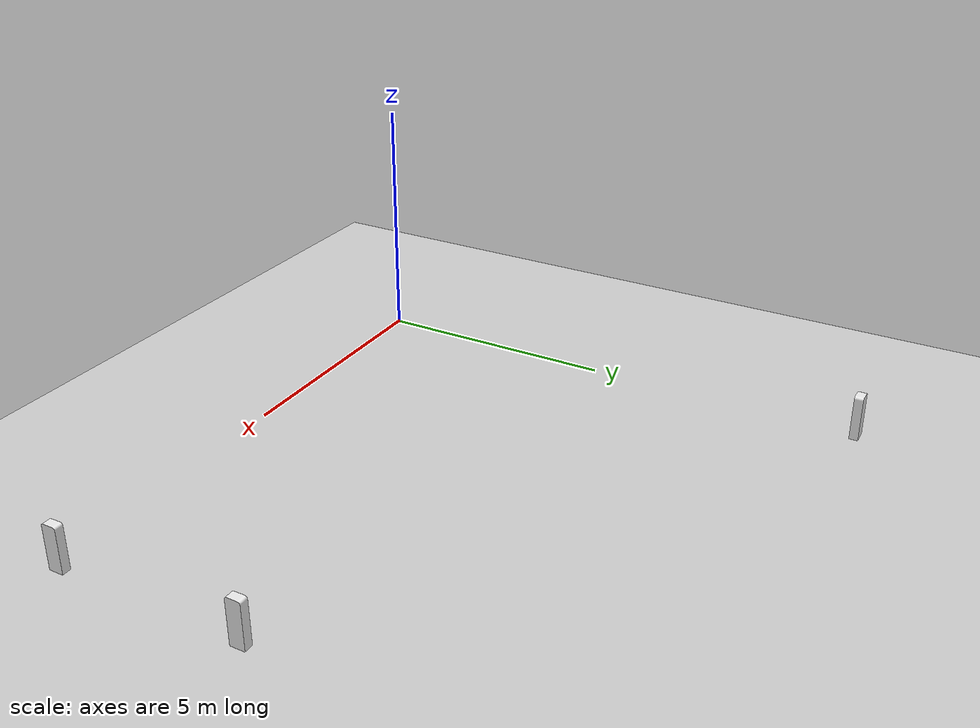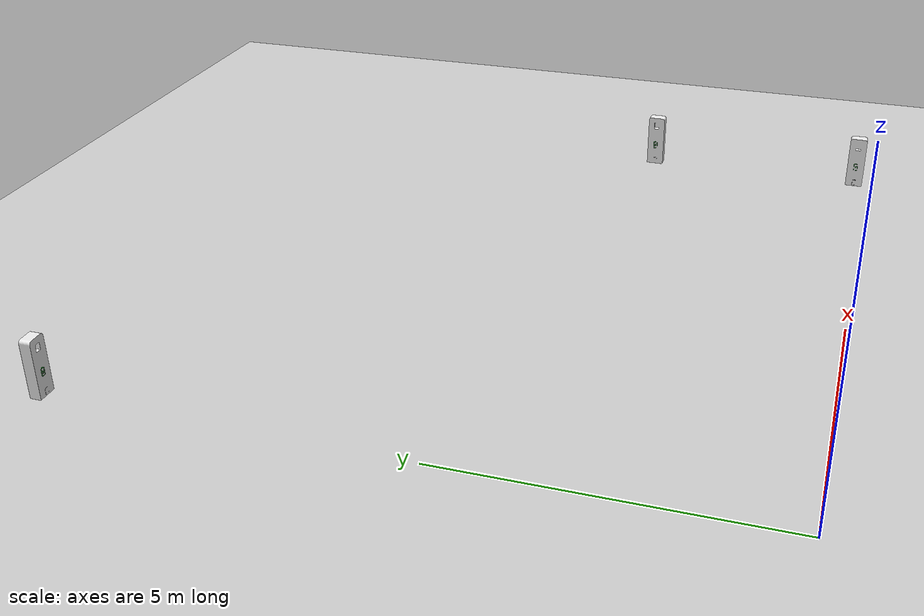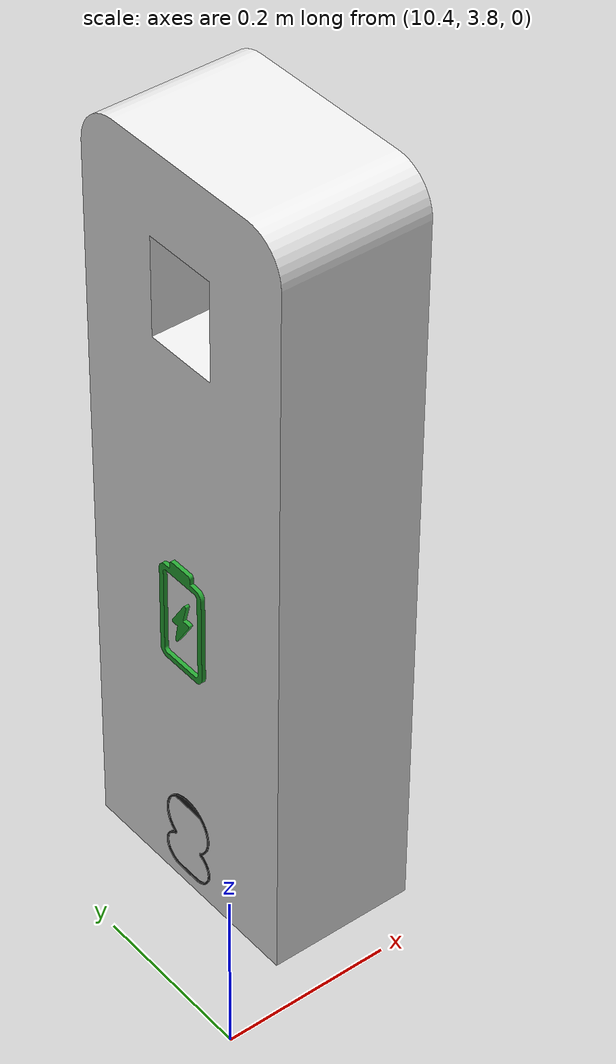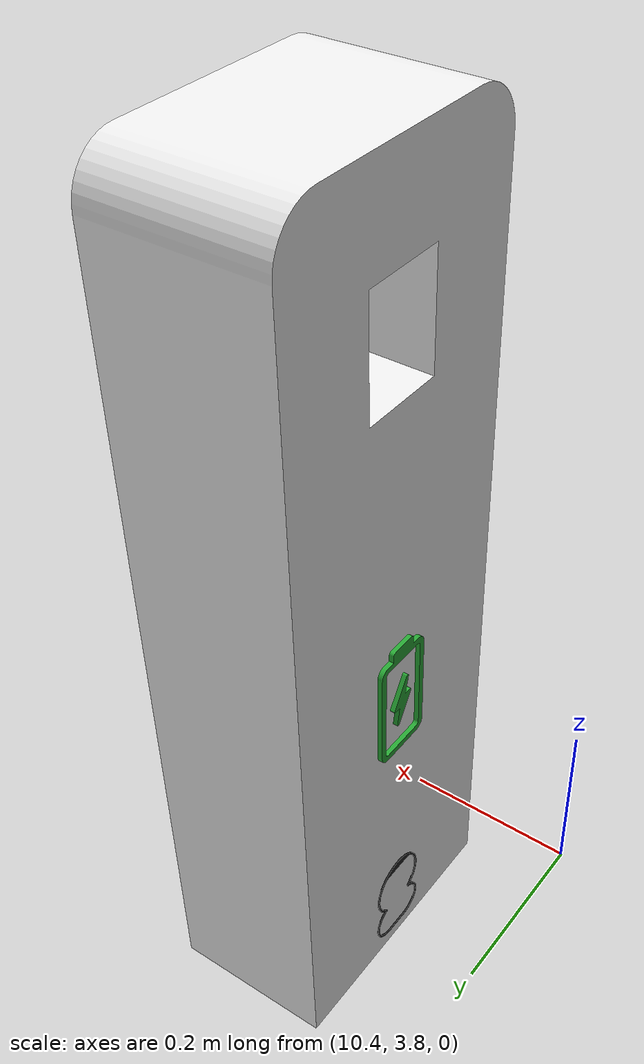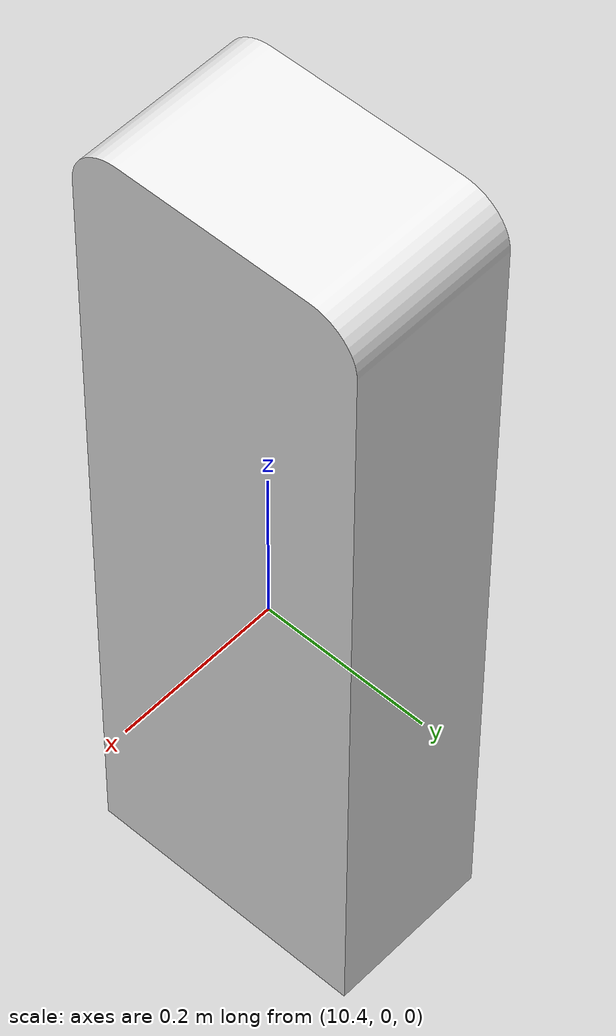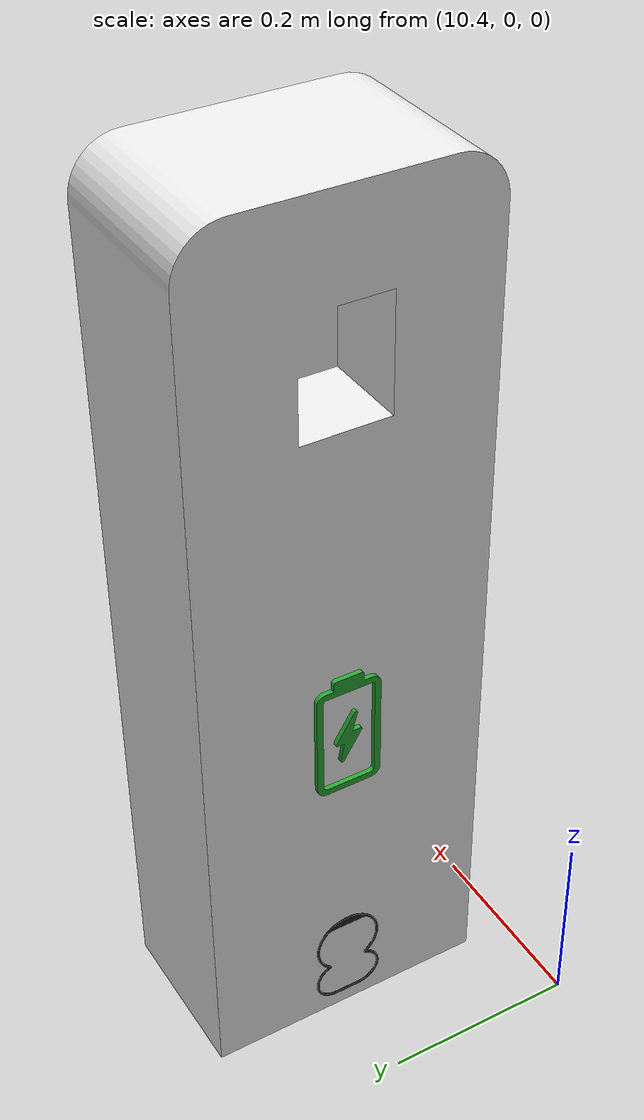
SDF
<sdf version="1.7">
 <world name="default">
  <light name="sun" type="directional">
   <pose>0 0 10 0 -0 0</pose>
   <diffuse>0.8 0.8 0.8 1</diffuse>
   <specular>0.2 0.2 0.2 1</specular>
   <attenuation>
    <range>1000</range>
    <constant>0.9</constant>
    <linear>0.01</linear>
    <quadratic>0.001</quadratic>
   </attenuation>
   <direction>-0.5 0.1 -0.9</direction>
   <spot><inner_angle>0</inner_angle><outer_angle>0</outer_angle><falloff>0</falloff></spot>
  </light>
  <model name="ground_plane">
   <static>1</static>
   <link name="link">
    <collision name="collision">
     <geometry><plane><normal>0 0 1</normal><size>100 100</size></plane></geometry>
     <surface><friction><ode><mu>100</mu><mu2>50</mu2></ode></friction></surface>
    </collision>
    <visual name="visual">
     <cast_shadows>0</cast_shadows>
     <geometry><plane><normal>0 0 1</normal><size>100 100</size></plane></geometry>
     <material>
      <script><uri>file://media/materials/scripts/gazebo.material</uri><name>Gazebo/Grey</name></script>
     </material>
    </visual>
   </link>
  </model>
  <gravity>0 0 -9.8</gravity>
  <magnetic_field>6e-06 2.3e-05 -4.2e-05</magnetic_field>
  <atmosphere type="adiabatic"/>
  <physics type="ode">
   <max_step_size>0.001</max_step_size>
   <real_time_factor>1</real_time_factor>
   <real_time_update_rate>1000</real_time_update_rate>
  </physics>
  <scene><ambient>0.4 0.4 0.4 1</ambient><background>0.7 0.7 0.7 1</background><shadows>1</shadows></scene>
  <audio><device>default</device></audio>
  <spherical_coordinates>
   <surface_model>EARTH_WGS84</surface_model>
   <latitude_deg>0</latitude_deg>
   <longitude_deg>0</longitude_deg>
   <elevation>0</elevation>
   <heading_deg>0</heading_deg>
  </spherical_coordinates>
  <model name="tram_sac_VF3">
   <static>1</static>
   <link name="body_link">
    <visual name="visual_tru">
     <geometry>
      <mesh><uri>model://tram_sac_VF/meshes/tru.stl</uri><scale>0.001 0.001 0.001</scale></mesh>
     </geometry>
     <material>
      <script><uri>file://media/materials/scripts/gazebo.material</uri><name>Gazebo/White</name></script>
     </material>
    </visual>
    <visual name="visual_cong_sac">
     <pose>0 0.005 0 0 -0 0</pose>
     <geometry>
      <mesh><uri>model://tram_sac_VF/meshes/cong_sac.stl</uri><scale>0.001 0.001 0.001</scale></mesh>
     </geometry>
     <material>
      <script><uri>file://media/materials/scripts/gazebo.material</uri><name>Gazebo/Black</name></script>
     </material>
    </visual>
    <visual name="visual_icon">
     <geometry>
      <mesh><uri>model://tram_sac_VF/meshes/icon.stl</uri><scale>0.001 0.001 0.001</scale></mesh>
     </geometry>
     <material>
      <script><uri>file://media/materials/scripts/gazebo.material</uri><name>Gazebo/Green</name></script>
     </material>
    </visual>
    <collision name="collision_tru">
     <pose>0 0.1 0.45 0 -0 0</pose>
     <geometry><box><size>0.32 0.15 0.92</size></box></geometry>
    </collision>
    <collision name="collision_cong_sac">
     <pose>0 0.005 0 0 -0 0</pose>
     <geometry>
      <mesh><uri>model://tram_sac_VF/meshes/tramsac.stl</uri><scale>0.001 0.001 0.001</scale></mesh>
     </geometry>
     <surface><friction><ode><mu>1</mu><mu2>1</mu2></ode></friction></surface>
    </collision>
   </link>
   <pose>0 10.5 0 0 -0 0</pose>
  </model>
  <model name="tram_sac_VF2">
   <static>1</static>
   <link name="body_link">
    <visual name="visual_tru">
     <geometry>
      <mesh><uri>model://tram_sac_VF/meshes/tru.stl</uri><scale>0.001 0.001 0.001</scale></mesh>
     </geometry>
     <material>
      <script><uri>file://media/materials/scripts/gazebo.material</uri><name>Gazebo/White</name></script>
     </material>
    </visual>
    <visual name="visual_cong_sac">
     <pose>0 0.005 0 0 -0 0</pose>
     <geometry>
      <mesh><uri>model://tram_sac_VF/meshes/cong_sac.stl</uri><scale>0.001 0.001 0.001</scale></mesh>
     </geometry>
     <material>
      <script><uri>file://media/materials/scripts/gazebo.material</uri><name>Gazebo/Black</name></script>
     </material>
    </visual>
    <visual name="visual_icon">
     <geometry>
      <mesh><uri>model://tram_sac_VF/meshes/icon.stl</uri><scale>0.001 0.001 0.001</scale></mesh>
     </geometry>
     <material>
      <script><uri>file://media/materials/scripts/gazebo.material</uri><name>Gazebo/Green</name></script>
     </material>
    </visual>
    <collision name="collision_tru">
     <pose>0 0.1 0.45 0 -0 0</pose>
     <geometry><box><size>0.32 0.15 0.92</size></box></geometry>
    </collision>
    <collision name="collision_cong_sac">
     <pose>0 0.005 0 0 -0 0</pose>
     <geometry>
      <mesh><uri>model://tram_sac_VF/meshes/tramsac.stl</uri><scale>0.001 0.001 0.001</scale></mesh>
     </geometry>
     <surface><friction><ode><mu>1</mu><mu2>1</mu2></ode></friction></surface>
    </collision>
   </link>
   <pose>10.5 4 0 0 0 -1.57</pose>
  </model>
  <model name="tram_sac_VF1">
   <static>1</static>
   <link name="body_link">
    <visual name="visual_tru">
     <geometry>
      <mesh><uri>model://tram_sac_VF/meshes/tru.stl</uri><scale>0.001 0.001 0.001</scale></mesh>
     </geometry>
     <material>
      <script><uri>file://media/materials/scripts/gazebo.material</uri><name>Gazebo/White</name></script>
     </material>
    </visual>
    <visual name="visual_cong_sac">
     <pose>0 0.005 0 0 -0 0</pose>
     <geometry>
      <mesh><uri>model://tram_sac_VF/meshes/cong_sac.stl</uri><scale>0.001 0.001 0.001</scale></mesh>
     </geometry>
     <material>
      <script><uri>file://media/materials/scripts/gazebo.material</uri><name>Gazebo/Black</name></script>
     </material>
    </visual>
    <visual name="visual_icon">
     <geometry>
      <mesh><uri>model://tram_sac_VF/meshes/icon.stl</uri><scale>0.001 0.001 0.001</scale></mesh>
     </geometry>
     <material>
      <script><uri>file://media/materials/scripts/gazebo.material</uri><name>Gazebo/Green</name></script>
     </material>
    </visual>
    <collision name="collision_tru">
     <pose>0 0.1 0.45 0 -0 0</pose>
     <geometry><box><size>0.32 0.15 0.92</size></box></geometry>
    </collision>
    <collision name="collision_cong_sac">
     <pose>0 0.005 0 0 -0 0</pose>
     <geometry>
      <mesh><uri>model://tram_sac_VF/meshes/tramsac.stl</uri><scale>0.001 0.001 0.001</scale></mesh>
     </geometry>
     <surface><friction><ode><mu>1</mu><mu2>1</mu2></ode></friction></surface>
    </collision>
   </link>
   <pose>10.5 0.2 0 0 0 -1.57</pose>
  </model>
  <light name="user_point_light_0" type="point">
   <pose>0.490315 1.5429 1 0 -0 0</pose>
   <diffuse>0.5 0.5 0.5 1</diffuse>
   <specular>0.1 0.1 0.1 1</specular>
   <attenuation>
    <range>20</range>
    <constant>0.5</constant>
    <linear>0.01</linear>
    <quadratic>0.001</quadratic>
   </attenuation>
   <cast_shadows>0</cast_shadows>
   <direction>0 0 -1</direction>
  </light>
 </world>
</sdf>
